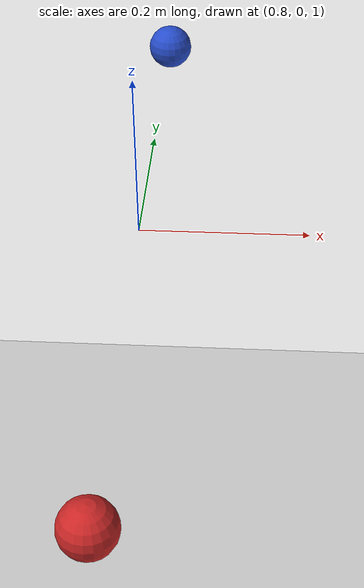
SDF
<?xml version="1.0" ?>
<sdf version="1.4">
  <world name="bimanual_manipulation_world">

    <physics type="ode">
      <gravity>0 0 -9.81</gravity>
      <ode>
        <solver>
          <type>quick</type>
          <iters>150</iters>
          <sor>1.3</sor>
        </solver>
        <constraints>
          <cfm>0.0</cfm>
          <erp>0.5</erp>
          <contact_max_correcting_vel>2.0</contact_max_correcting_vel>
          <contact_surface_layer>0.001</contact_surface_layer>
        </constraints>
      </ode>
      <real_time_update_rate>1000</real_time_update_rate>
      <max_step_size>0.001</max_step_size>
    </physics>

    <plugin name="ros2_linkattacher" filename="libgazebo_link_attacher.so"/>

    <!-- Standard illumination and ground -->
    <include><uri>model://sun</uri></include>
    <include><uri>model://ground_plane</uri></include>

    <model name="red_target">
      <static>true</static>
      <pose>0.80 -0.45 1.00 0 0 0</pose>
      <link name="link">
        <visual name="vis">
          <geometry><sphere><radius>0.03</radius></sphere></geometry>
          <material><script><uri>file://media/materials/scripts/gazebo.material</uri><name>Gazebo/Red</name></script></material>
        </visual>
      </link>
    </model>

    <model name="blue_target">
      <static>true</static>
      <pose>0.80 0.45 1.00 0 0 0</pose>
      <link name="link">
        <visual name="vis">
          <geometry><sphere><radius>0.03</radius></sphere></geometry>
          <material><script><uri>file://media/materials/scripts/gazebo.material</uri><name>Gazebo/Blue</name></script></material>
        </visual>
      </link>
    </model>

  </world>
</sdf>
